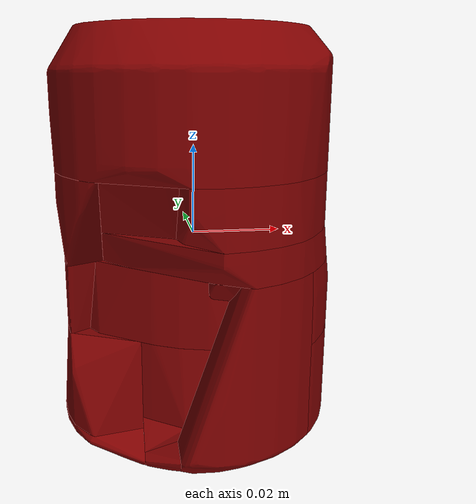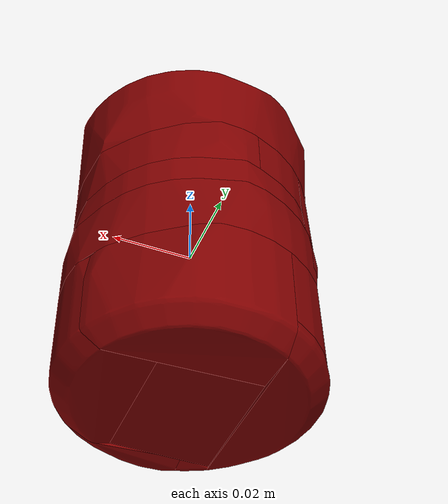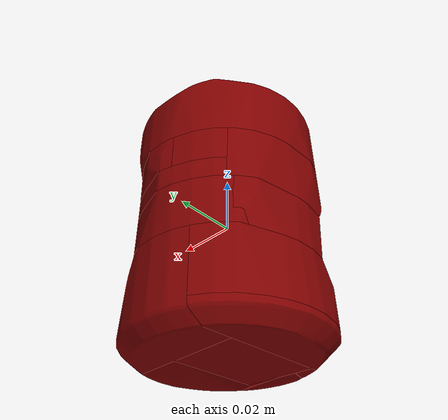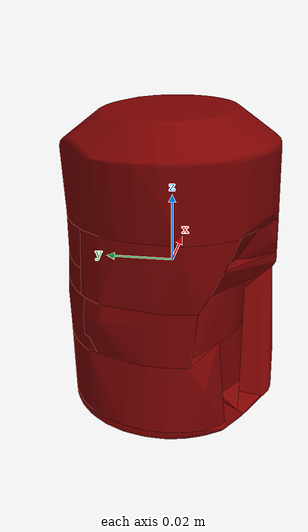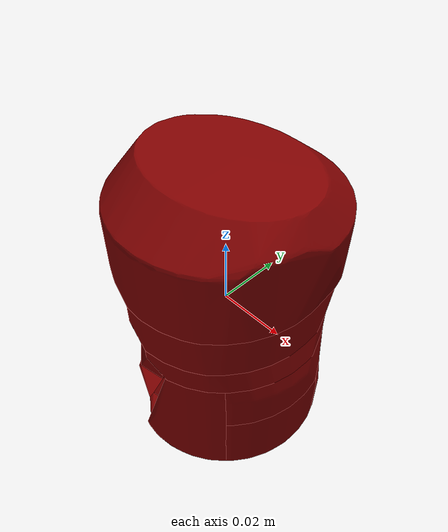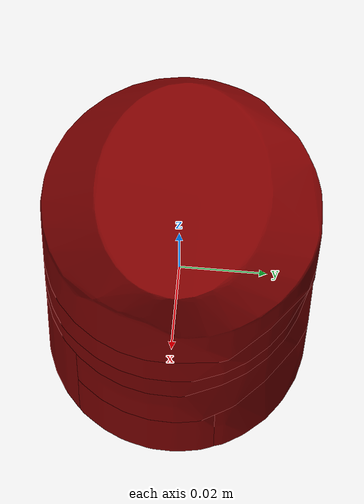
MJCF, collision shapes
<mujoco model="can_23">
  <asset>
    <mesh file="visual/model_normalized_0.obj" name="model_normalized_0_vis" scale="0.09000000000000001 0.09000000000000001 0.09000000000000001" refquat="1.0 0.0 0.0 0.0"/>
    <mesh file="visual/model_normalized_1.obj" name="model_normalized_1_vis" scale="0.09000000000000001 0.09000000000000001 0.09000000000000001" refquat="1.0 0.0 0.0 0.0"/>
    <mesh file="visual/model_normalized_2.obj" name="model_normalized_2_vis" scale="0.09000000000000001 0.09000000000000001 0.09000000000000001" refquat="1.0 0.0 0.0 0.0"/>
    <texture type="2d" name="image0" file="visual/image0.png"/>
    <texture type="2d" name="image1" file="visual/image1.png"/>
    <material name="01_-_Default.015" texture="image0" specular="0.5" shininess="0.15999998099999999"/>
    <material name="02_-_Default.005" texture="image0" specular="0.5" shininess="0.15999998099999999"/>
    <material name="Solid_Glass" texture="image1" specular="0.5" shininess="0.15999998099999999"/>
    <mesh file="collision/collision_mesh_collision_0.obj" name="can_collision_mesh_0" scale="0.09000000000000001 0.09000000000000001 0.09000000000000001" refquat="1.0 0.0 0.0 0.0"/>
    <mesh file="collision/collision_mesh_collision_1.obj" name="can_collision_mesh_1" scale="0.09000000000000001 0.09000000000000001 0.09000000000000001" refquat="1.0 0.0 0.0 0.0"/>
    <mesh file="collision/collision_mesh_collision_2.obj" name="can_collision_mesh_2" scale="0.09000000000000001 0.09000000000000001 0.09000000000000001" refquat="1.0 0.0 0.0 0.0"/>
    <mesh file="collision/collision_mesh_collision_3.obj" name="can_collision_mesh_3" scale="0.09000000000000001 0.09000000000000001 0.09000000000000001" refquat="1.0 0.0 0.0 0.0"/>
    <mesh file="collision/collision_mesh_collision_4.obj" name="can_collision_mesh_4" scale="0.09000000000000001 0.09000000000000001 0.09000000000000001" refquat="1.0 0.0 0.0 0.0"/>
    <mesh file="collision/collision_mesh_collision_5.obj" name="can_collision_mesh_5" scale="0.09000000000000001 0.09000000000000001 0.09000000000000001" refquat="1.0 0.0 0.0 0.0"/>
    <mesh file="collision/collision_mesh_collision_6.obj" name="can_collision_mesh_6" scale="0.09000000000000001 0.09000000000000001 0.09000000000000001" refquat="1.0 0.0 0.0 0.0"/>
    <mesh file="collision/collision_mesh_collision_7.obj" name="can_collision_mesh_7" scale="0.09000000000000001 0.09000000000000001 0.09000000000000001" refquat="1.0 0.0 0.0 0.0"/>
    <mesh file="collision/collision_mesh_collision_8.obj" name="can_collision_mesh_8" scale="0.09000000000000001 0.09000000000000001 0.09000000000000001" refquat="1.0 0.0 0.0 0.0"/>
    <mesh file="collision/collision_mesh_collision_9.obj" name="can_collision_mesh_9" scale="0.09000000000000001 0.09000000000000001 0.09000000000000001" refquat="1.0 0.0 0.0 0.0"/>
    <mesh file="collision/collision_mesh_collision_10.obj" name="can_collision_mesh_10" scale="0.09000000000000001 0.09000000000000001 0.09000000000000001" refquat="1.0 0.0 0.0 0.0"/>
    <mesh file="collision/collision_mesh_collision_11.obj" name="can_collision_mesh_11" scale="0.09000000000000001 0.09000000000000001 0.09000000000000001" refquat="1.0 0.0 0.0 0.0"/>
    <mesh file="collision/collision_mesh_collision_12.obj" name="can_collision_mesh_12" scale="0.09000000000000001 0.09000000000000001 0.09000000000000001" refquat="1.0 0.0 0.0 0.0"/>
    <mesh file="collision/collision_mesh_collision_13.obj" name="can_collision_mesh_13" scale="0.09000000000000001 0.09000000000000001 0.09000000000000001" refquat="1.0 0.0 0.0 0.0"/>
    <mesh file="collision/collision_mesh_collision_14.obj" name="can_collision_mesh_14" scale="0.09000000000000001 0.09000000000000001 0.09000000000000001" refquat="1.0 0.0 0.0 0.0"/>
    <mesh file="collision/collision_mesh_collision_15.obj" name="can_collision_mesh_15" scale="0.09000000000000001 0.09000000000000001 0.09000000000000001" refquat="1.0 0.0 0.0 0.0"/>
  </asset>
  <default>
    <default class="region">
      <geom group="1" conaffinity="0" contype="0" rgba="0 1 0 0"/>
    </default>
    <default class="collision">
      <geom group="0" rgba="0.5 0 0 0.5" density="1000.0"/>
    </default>
  </default>
  <worldbody>
    <body>
      <body name="object">
        <geom solimp="0.998 0.998 0.001" solref="0.001 1" density="100" friction="0.95 0.3 0.1" type="mesh" mesh="model_normalized_0_vis" conaffinity="0" contype="0" group="1" material="Solid_Glass"/>
        <geom solimp="0.998 0.998 0.001" solref="0.001 1" density="100" friction="0.95 0.3 0.1" type="mesh" mesh="model_normalized_1_vis" conaffinity="0" contype="0" group="1" material="02_-_Default.005"/>
        <geom solimp="0.998 0.998 0.001" solref="0.001 1" density="100" friction="0.95 0.3 0.1" type="mesh" mesh="model_normalized_2_vis" conaffinity="0" contype="0" group="1" material="01_-_Default.015"/>
        <geom class="region" name="reg_bbox" type="box" pos="1.8402750000000856e-05 -4.837500000001716e-06 6.210000000228533e-08" size="0.030899704950000006 0.0313901883 0.045397559700000006"/>
        <geom mesh="can_collision_mesh_0" type="mesh" class="collision"/>
        <geom mesh="can_collision_mesh_1" type="mesh" class="collision"/>
        <geom mesh="can_collision_mesh_2" type="mesh" class="collision"/>
        <geom mesh="can_collision_mesh_3" type="mesh" class="collision"/>
        <geom mesh="can_collision_mesh_4" type="mesh" class="collision"/>
        <geom mesh="can_collision_mesh_5" type="mesh" class="collision"/>
        <geom mesh="can_collision_mesh_6" type="mesh" class="collision"/>
        <geom mesh="can_collision_mesh_7" type="mesh" class="collision"/>
        <geom mesh="can_collision_mesh_8" type="mesh" class="collision"/>
        <geom mesh="can_collision_mesh_9" type="mesh" class="collision"/>
        <geom mesh="can_collision_mesh_10" type="mesh" class="collision"/>
        <geom mesh="can_collision_mesh_11" type="mesh" class="collision"/>
        <geom mesh="can_collision_mesh_12" type="mesh" class="collision"/>
        <geom mesh="can_collision_mesh_13" type="mesh" class="collision"/>
        <geom mesh="can_collision_mesh_14" type="mesh" class="collision"/>
        <geom mesh="can_collision_mesh_15" type="mesh" class="collision"/>
      </body>
    </body>
  </worldbody>
</mujoco>
